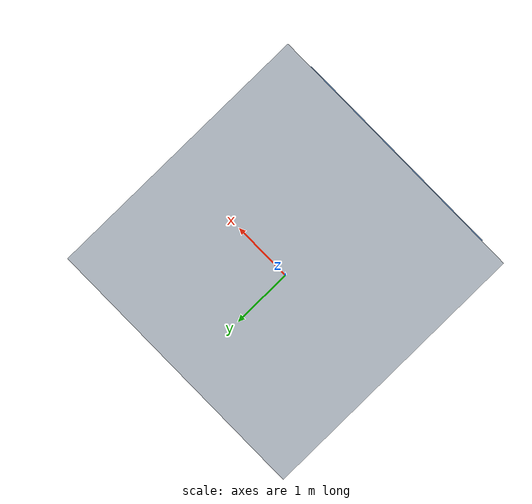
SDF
<?xml version="1.0"?>
<sdf version="1.8">
  <model name="simple_building">
    <static>true</static>
    <link name="body">
      <pose>0 0 2.5 0 0 0</pose>
      <collision name="body_col">
        <geometry><box><size>4.0 4.0 5.0</size></box></geometry>
      </collision>
      <visual name="body_vis">
        <cast_shadows>false</cast_shadows>
        <geometry><box><size>4.0 4.0 5.0</size></box></geometry>
        <material>
          <ambient>0.55 0.58 0.62 1</ambient>
          <diffuse>0.65 0.68 0.72 1</diffuse>
        </material>
      </visual>
      <visual name="win_front">
        <cast_shadows>false</cast_shadows>
        <pose>0 -2.01 0.5 0 0 0</pose>
        <geometry><box><size>3.2 0.05 3.5</size></box></geometry>
        <material>
          <ambient>0.35 0.50 0.70 1</ambient>
          <diffuse>0.40 0.58 0.80 1</diffuse>
        </material>
      </visual>
    </link>
  </model>
</sdf>
